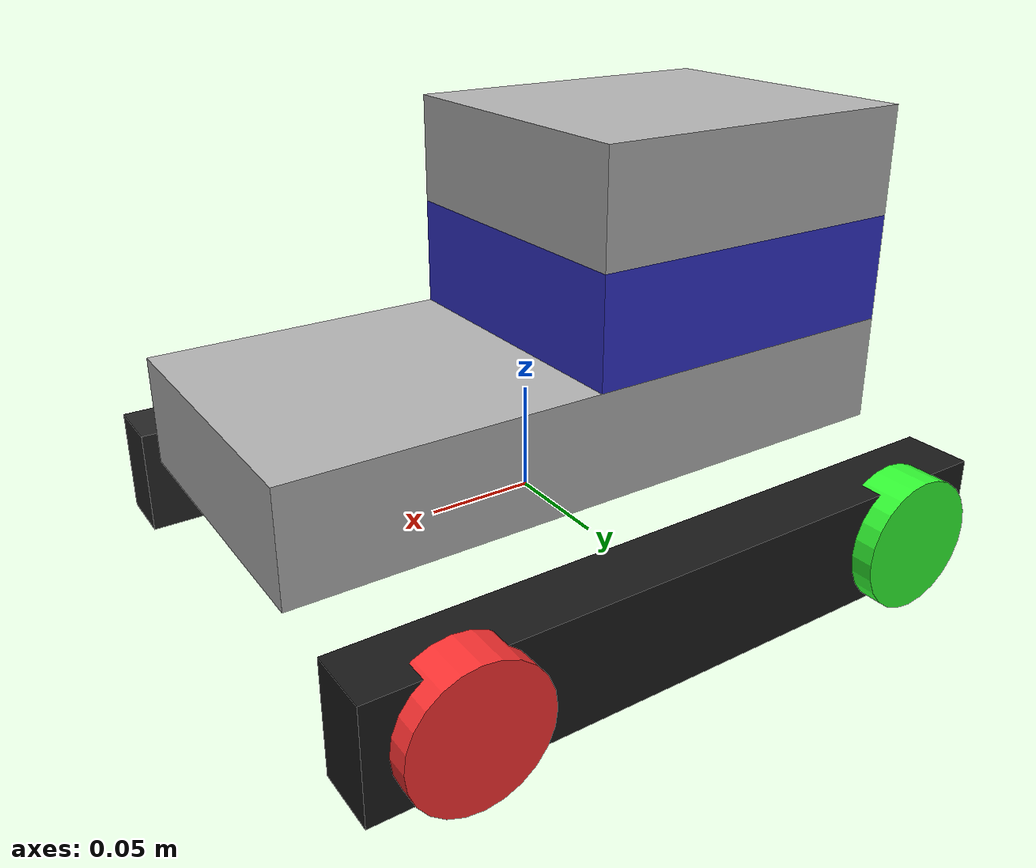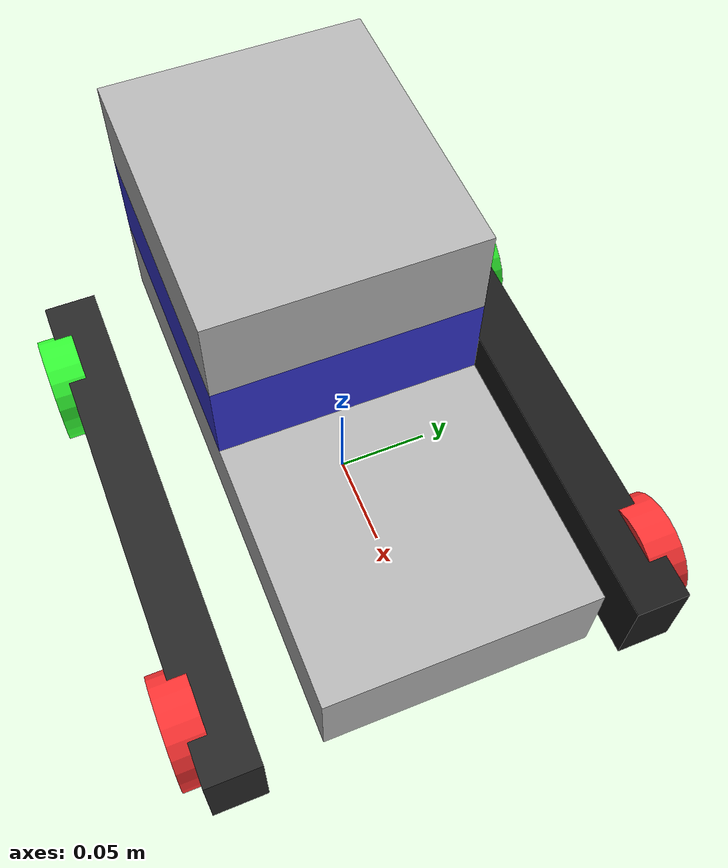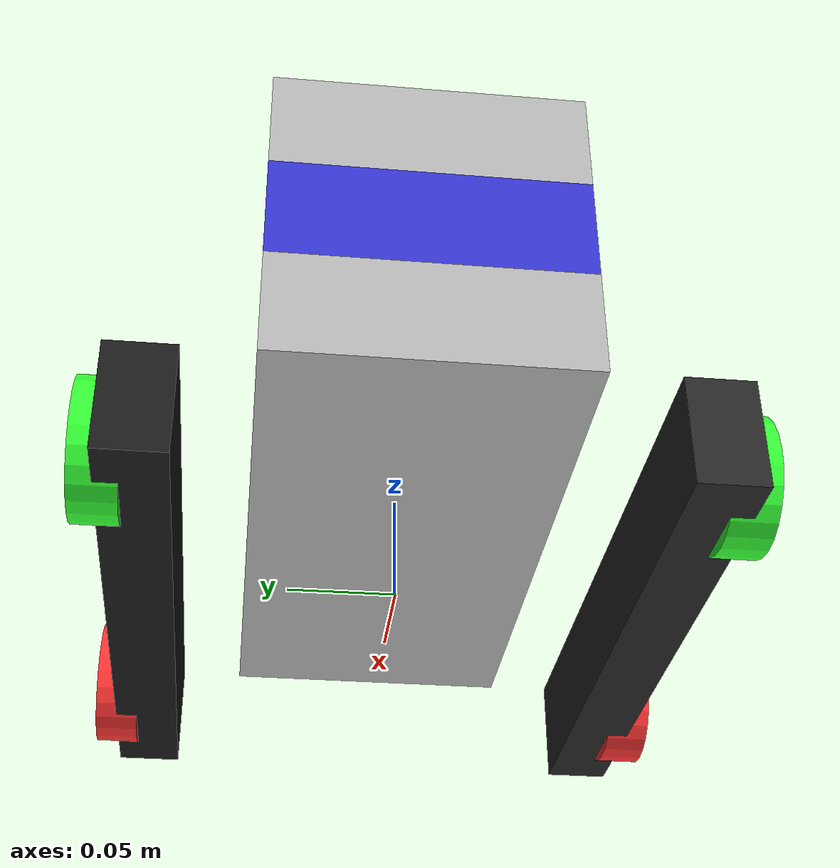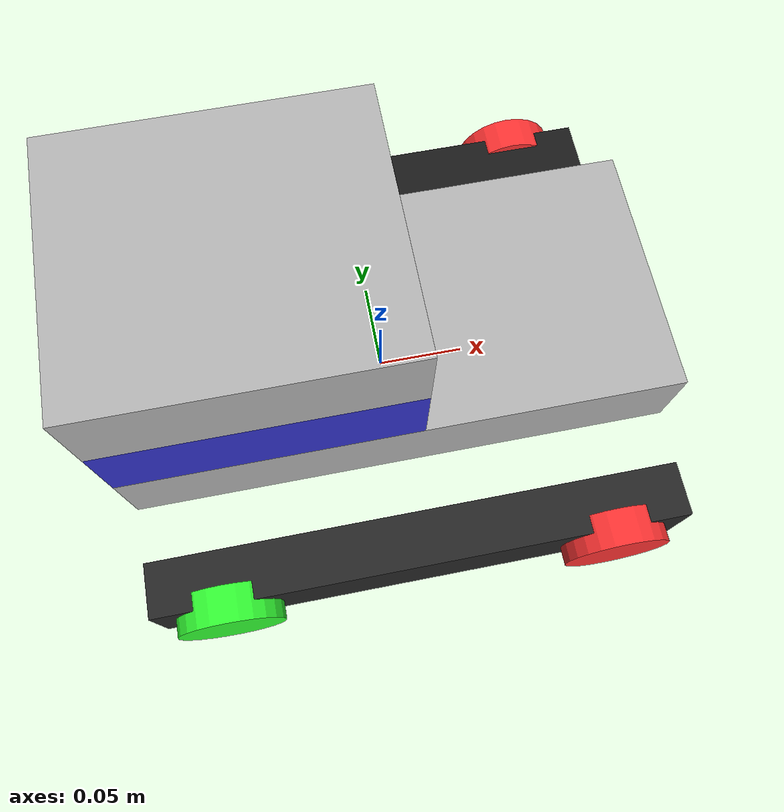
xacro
<?xml version="1.0"?>
<robot xmlns:xacro="http://ros.org/wiki/xacro" name="xiaor_geek_tank_colored">

  <!-- Main chassis (raised) -->
  <link name="base_link">
    <visual>
      <geometry>
        <box size="0.30 0.14 0.05"/> <!-- 30cm x 14cm x 5cm -->
      </geometry>
      <origin xyz="0 0 0.05"/> <!-- raise it above the tracks -->
      <material name="silver">
        <color rgba="0.7 0.7 0.7 1.0"/>
      </material>
    </visual>

    <!-- Rear enclosure, aligned with the physical robot -->
    <visual>
      <geometry>
        <box size="0.16 0.14 0.05"/>
      </geometry>
      <origin xyz="-0.07 0 0.10"/>
      <material name="BlueTop">
        <color rgba="0.2 0.2 0.8 1"/>
      </material>
    </visual>

    <!-- Top of the rear enclosure -->
    <visual>
      <geometry>
        <box size="0.16 0.14 0.05"/>
      </geometry>
      <origin xyz="-0.07 0 0.15"/>
      <material name="silver">
        <color rgba="0.7 0.7 0.7 1.0"/>
      </material>
    </visual>

    <collision>
      <geometry>
        <box size="0.30 0.20 0.05"/>
      </geometry>
      <origin xyz="0 0 0.05"/>
    </collision>

    <!-- Simple inertial; tune as needed -->
    <inertial>
      <mass value="2.0"/>
      <origin xyz="0 0 0.05"/>
      <inertia ixx="0.1" ixy="0.0" ixz="0.0"
               iyy="0.1" iyz="0.0"
               izz="0.1"/>
    </inertial>
  </link>

  <!-- Left track (fixed visual) -->
  <link name="left_track">
    <visual>
      <geometry>
        <box size="0.30 0.03 0.05"/>
      </geometry>
      <material name="black">
        <color rgba="0.1 0.1 0.1 1.0"/>
      </material>
    </visual>
  </link>
  <joint name="left_track_joint" type="fixed">
    <parent link="base_link"/>
    <child link="left_track"/>
    <origin xyz="0 0.115 0"/>
  </joint>

  <!-- Right track (fixed visual) -->
  <link name="right_track">
    <visual>
      <geometry>
        <box size="0.30 0.03 0.05"/>
      </geometry>
      <material name="black_track">
        <color rgba="0.15 0.15 0.15 1.0"/>
      </material>
    </visual>
  </link>
  <joint name="right_track_joint" type="fixed">
    <parent link="base_link"/>
    <child link="right_track"/>
    <origin xyz="0 -0.115 0"/>
  </joint>

  <!-- Left drive wheel (continuous around +Y) -->
  <link name="left_wheel">
    <visual>
      <geometry><cylinder radius="0.03" length="0.02"/></geometry>
      <origin rpy="1.5708 0 0"/>   <!-- makes cylinder look like a wheel -->
      <material name="red_wheel"><color rgba="1.0 0.2 0.2 1.0"/></material>
    </visual>
  </link>
  <joint name="left_wheel_joint" type="continuous">
    <parent link="base_link"/>
    <child link="left_wheel"/>
    <origin xyz="0.11 0.13 0"/>
    <axis xyz="0 1 0"/>
  </joint>

  <!-- Right drive wheel (continuous around +Y) -->
  <link name="right_wheel">
    <visual>
      <geometry><cylinder radius="0.03" length="0.02"/></geometry>
      <origin rpy="1.5708 0 0"/>
      <material name="red_wheel"><color rgba="1.0 0.2 0.2 1.0"/></material>
    </visual>
  </link>
  <joint name="right_wheel_joint" type="continuous">
    <parent link="base_link"/>
    <child link="right_wheel"/>
    <origin xyz="0.11 -0.13 0"/>
    <axis xyz="0 1 0"/>
  </joint>

  <!-- Left idler (fixed) -->
  <link name="left_idler">
    <visual>
      <geometry><cylinder radius="0.03" length="0.02"/></geometry>
      <material name="green_idler"><color rgba="0.2 1.0 0.2 1.0"/></material>
      <origin rpy="1.5708 0 0"/>
    </visual>
  </link>
  <joint name="left_idler_joint" type="fixed">
    <parent link="base_link"/>
    <child link="left_idler"/>
    <origin xyz="-0.11 0.13 0"/>
  </joint>

  <!-- Right idler (fixed) -->
  <link name="right_idler">
    <visual>
      <geometry><cylinder radius="0.03" length="0.02"/></geometry>
      <material name="green_idler"><color rgba="0.2 1.0 0.2 1.0"/></material>
      <origin rpy="1.5708 0 0"/>
    </visual>
  </link>
  <joint name="right_idler_joint" type="fixed">
    <parent link="base_link"/>
    <child link="right_idler"/>
    <origin xyz="-0.11 -0.13 0"/>
  </joint>

</robot>
